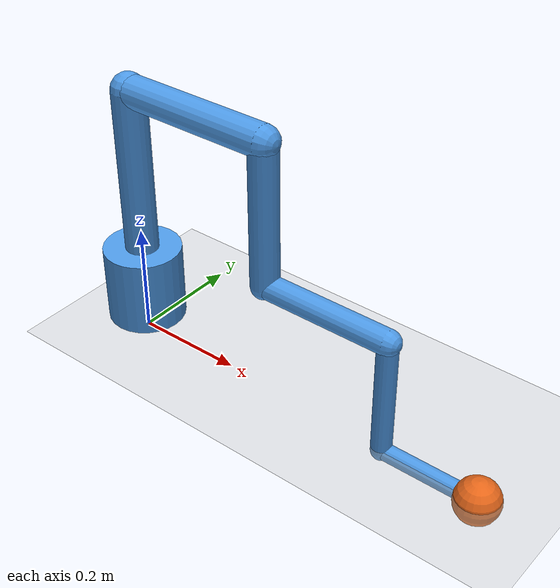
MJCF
<mujoco model="robot_arm_7dof">
  <option gravity="0 0 -9.81" timestep="0.002" integrator="RK4"/>

  <asset>
    <material name="link_mat" rgba="0.3 0.6 0.9 1"/>
    <material name="ee_mat"   rgba="0.9 0.4 0.1 1"/>
  </asset>

  <worldbody>
    <geom name="floor" type="plane" size="2 2 0.1" rgba="0.7 0.7 0.7 1"/>

    <body name="base" pos="0 0 0.1">
      <geom type="cylinder" size="0.07 0.07" material="link_mat" mass="3"/>

      <body name="link1" pos="0 0 0.07">
        <joint name="j1" type="hinge" axis="0 0 1" range="-3.14 3.14" damping="5" armature="0.1"/>
        <geom type="capsule" fromto="0 0 0  0 0 0.3" size="0.03" material="link_mat" mass="2"/>

        <body name="link2" pos="0 0 0.3">
          <joint name="j2" type="hinge" axis="0 1 0" range="-1.57 1.57" damping="4" armature="0.08"/>
          <geom type="capsule" fromto="0 0 0  0.28 0 0" size="0.028" material="link_mat" mass="1.8"/>

          <body name="link3" pos="0.28 0 0">
            <joint name="j3" type="hinge" axis="0 0 1" range="-3.14 3.14" damping="3" armature="0.06"/>
            <geom type="capsule" fromto="0 0 0  0 0 -0.26" size="0.025" material="link_mat" mass="1.5"/>

            <body name="link4" pos="0 0 -0.26">
              <joint name="j4" type="hinge" axis="0 1 0" range="-2.0 2.0" damping="2.5" armature="0.05"/>
              <geom type="capsule" fromto="0 0 0  0.24 0 0" size="0.022" material="link_mat" mass="1.2"/>

              <body name="link5" pos="0.24 0 0">
                <joint name="j5" type="hinge" axis="0 0 1" range="-3.14 3.14" damping="2" armature="0.04"/>
                <geom type="capsule" fromto="0 0 0  0 0 -0.22" size="0.018" material="link_mat" mass="0.9"/>

                <body name="link6" pos="0 0 -0.22">
                  <joint name="j6" type="hinge" axis="0 1 0" range="-2.0 2.0" damping="1.5" armature="0.03"/>
                  <geom type="capsule" fromto="0 0 0  0.18 0 0" size="0.015" material="link_mat" mass="0.6"/>

                  <body name="link7" pos="0.18 0 0">
                    <joint name="j7" type="hinge" axis="0 0 1" range="-3.14 3.14" damping="1" armature="0.02"/>
                    <geom type="sphere" size="0.04" material="ee_mat" mass="0.4"
                          solimp="0.99 0.999 0.001" solref="0.02 1"/>
                    <site name="ee_site" size="0.015" rgba="1 0 0 1"/>
                  </body>
                </body>
              </body>
            </body>
          </body>
        </body>
      </body>
    </body>
  </worldbody>

  <actuator>
    <motor name="act_j1" joint="j1" gear="1" ctrllimited="true" ctrlrange="-87 87"/>
    <motor name="act_j2" joint="j2" gear="1" ctrllimited="true" ctrlrange="-87 87"/>
    <motor name="act_j3" joint="j3" gear="1" ctrllimited="true" ctrlrange="-87 87"/>
    <motor name="act_j4" joint="j4" gear="1" ctrllimited="true" ctrlrange="-87 87"/>
    <motor name="act_j5" joint="j5" gear="1" ctrllimited="true" ctrlrange="-12 12"/>
    <motor name="act_j6" joint="j6" gear="1" ctrllimited="true" ctrlrange="-12 12"/>
    <motor name="act_j7" joint="j7" gear="1" ctrllimited="true" ctrlrange="-12 12"/>
  </actuator>
</mujoco>
